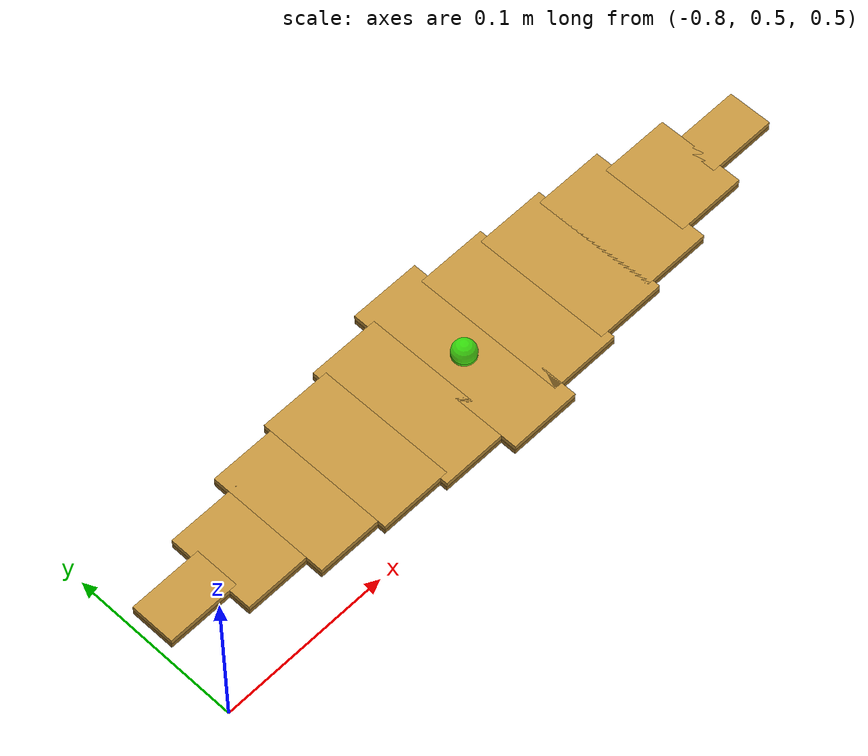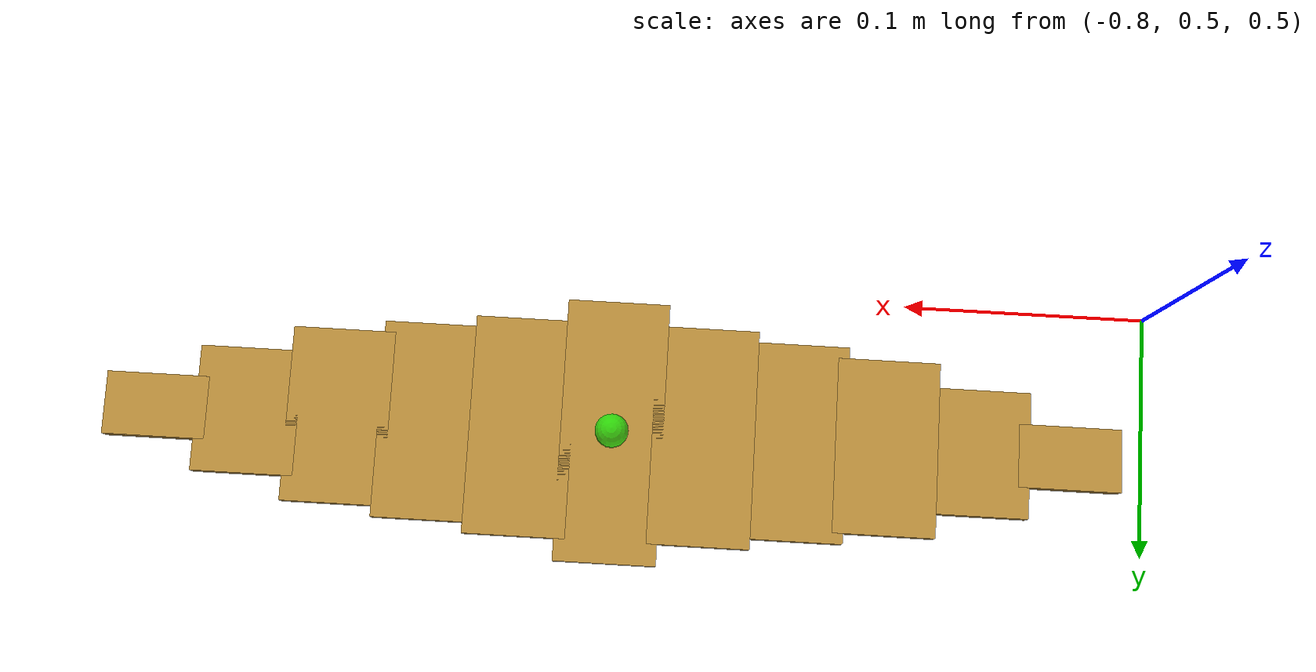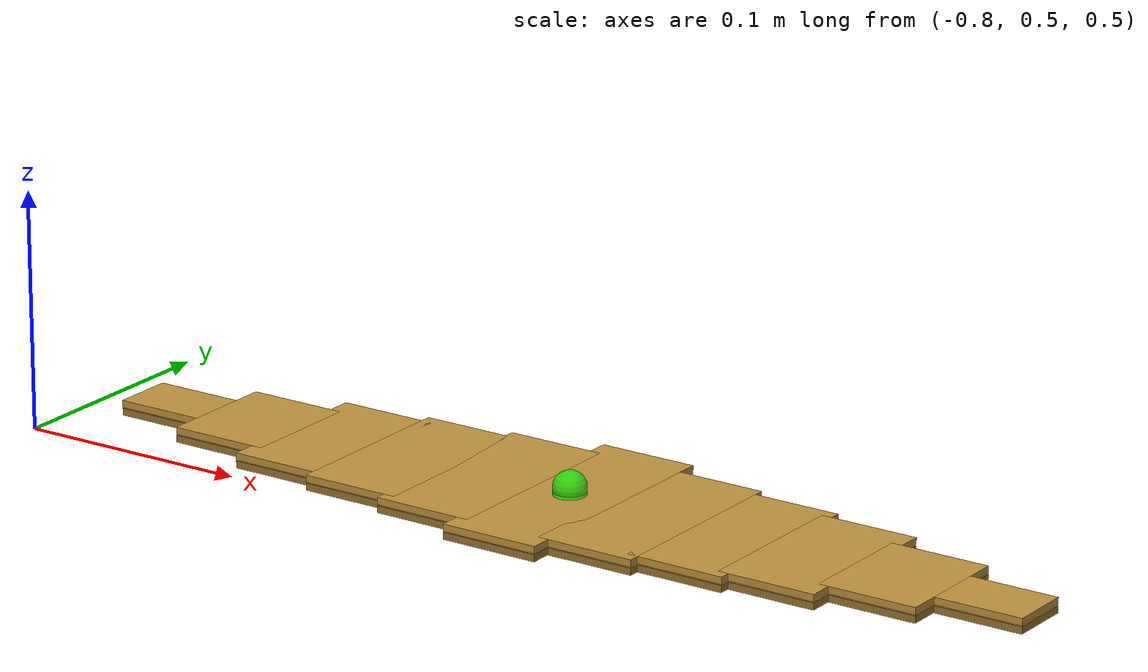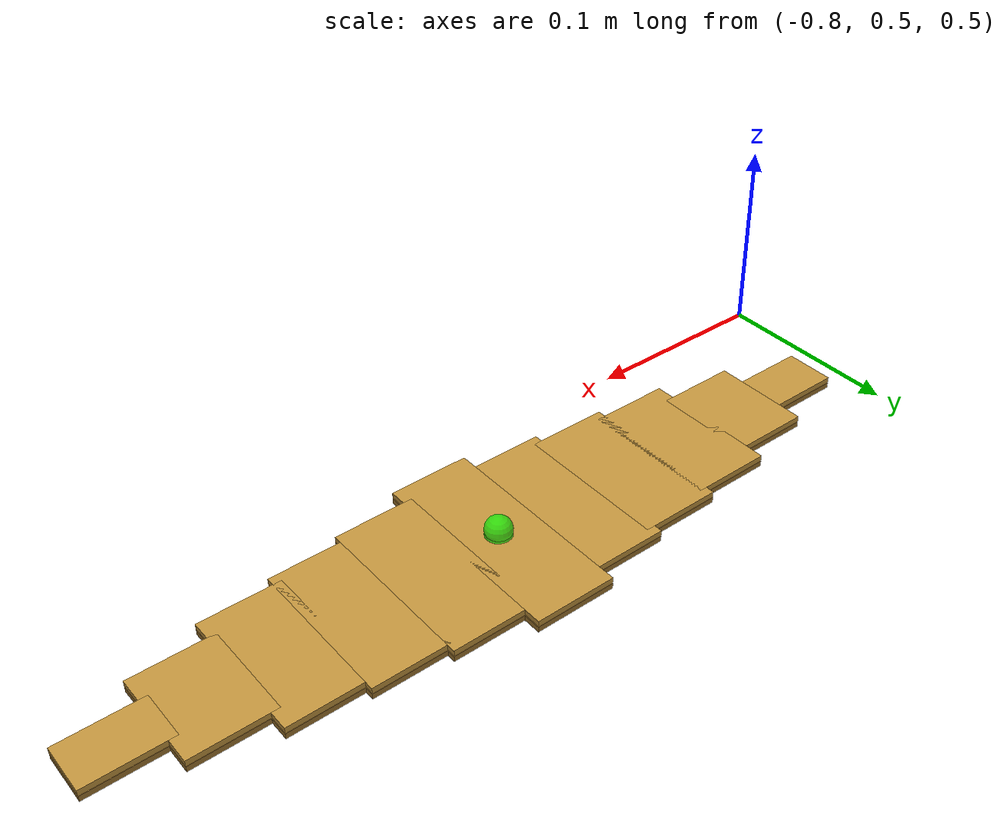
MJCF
<?xml version='1.0' encoding='utf-8'?>
<mujoco model="compliant bamboo leaf pair">
  <asset>
    <material name="compliant_bamboo_mat_bottom" rgba="0.62 0.46 0.18 1" specular="0.08" shininess="0.12"/>
    <material name="compliant_bamboo_mat_top" rgba="0.76 0.58 0.24 1" specular="0.08" shininess="0.12"/>
  </asset>
  <worldbody>
    <body name="staged_bamboo_leaf_bottom" pos="-0.58 0.56 0.4952" euler="0 0 0">
    <freejoint name="staged_bamboo_leaf_bottom_freejoint"/>
    <body name="staged_bamboo_leaf_bottom_seg_05">
    <geom name="staged_bamboo_leaf_bottom_seg_05_geom" type="box" size="0.02138 0.05500 0.00150" material="compliant_bamboo_mat_bottom" mass="0.000909" friction="4 2 1" condim="6" contype="1" conaffinity="5"/>
    <site name="staged_bamboo_leaf_bottom_pick_site" pos="0 0 0.00450" type="sphere" size="0.007" rgba="0 1 0 0.7"/>
    <site name="staged_bamboo_leaf_bottom_center_site" pos="0 0 0.00350" type="sphere" size="0.006" rgba="1 0 0 0.6"/>
      <body name="staged_bamboo_leaf_bottom_seg_06" pos="0.03818 0 0">
      <joint name="staged_bamboo_leaf_bottom_bend_06" type="hinge" axis="0 1 0" pos="-0.01909 0 0" range="-1.57 1.57" damping="0.012" stiffness="0.045" armature="0.0002" limited="true"/>
      <geom name="staged_bamboo_leaf_bottom_seg_06_geom" type="box" size="0.02138 0.04580 0.00150" material="compliant_bamboo_mat_bottom" mass="0.000909" friction="4 2 1" condim="6" contype="1" conaffinity="5"/>
      <body name="staged_bamboo_leaf_bottom_seg_07" pos="0.03818 0 0">
      <joint name="staged_bamboo_leaf_bottom_bend_07" type="hinge" axis="0 1 0" pos="-0.01909 0 0" range="-1.57 1.57" damping="0.012" stiffness="0.045" armature="0.0002" limited="true"/>
      <geom name="staged_bamboo_leaf_bottom_seg_07_geom" type="box" size="0.02138 0.04130 0.00150" material="compliant_bamboo_mat_bottom" mass="0.000909" friction="4 2 1" condim="6" contype="1" conaffinity="5"/>
      <body name="staged_bamboo_leaf_bottom_seg_08" pos="0.03818 0 0">
      <joint name="staged_bamboo_leaf_bottom_bend_08" type="hinge" axis="0 1 0" pos="-0.01909 0 0" range="-1.57 1.57" damping="0.012" stiffness="0.045" armature="0.0002" limited="true"/>
      <geom name="staged_bamboo_leaf_bottom_seg_08_geom" type="box" size="0.02138 0.03670 0.00150" material="compliant_bamboo_mat_bottom" mass="0.000909" friction="4 2 1" condim="6" contype="1" conaffinity="5"/>
      <body name="staged_bamboo_leaf_bottom_seg_09" pos="0.03818 0 0">
      <joint name="staged_bamboo_leaf_bottom_bend_09" type="hinge" axis="0 1 0" pos="-0.01909 0 0" range="-1.57 1.57" damping="0.012" stiffness="0.045" armature="0.0002" limited="true"/>
      <geom name="staged_bamboo_leaf_bottom_seg_09_geom" type="box" size="0.02138 0.02640 0.00150" material="compliant_bamboo_mat_bottom" mass="0.000909" friction="4 2 1" condim="6" contype="1" conaffinity="5"/>
      <body name="staged_bamboo_leaf_bottom_seg_10" pos="0.03818 0 0">
      <joint name="staged_bamboo_leaf_bottom_bend_10" type="hinge" axis="0 1 0" pos="-0.01909 0 0" range="-1.57 1.57" damping="0.012" stiffness="0.045" armature="0.0002" limited="true"/>
      <geom name="staged_bamboo_leaf_bottom_seg_10_geom" type="box" size="0.02138 0.01320 0.00150" material="compliant_bamboo_mat_bottom" mass="0.000909" friction="4 2 1" condim="6" contype="1" conaffinity="5"/>
      </body>
      </body>
      </body>
      </body>
      </body>
      <body name="staged_bamboo_leaf_bottom_seg_04" pos="-0.03818 0 0">
      <joint name="staged_bamboo_leaf_bottom_bend_05" type="hinge" axis="0 -1 0" pos="0.01909 0 0" range="-1.57 1.57" damping="0.012" stiffness="0.045" armature="0.0002" limited="true"/>
      <geom name="staged_bamboo_leaf_bottom_seg_04_geom" type="box" size="0.02138 0.04580 0.00150" material="compliant_bamboo_mat_bottom" mass="0.000909" friction="4 2 1" condim="6" contype="1" conaffinity="5"/>
      <body name="staged_bamboo_leaf_bottom_seg_03" pos="-0.03818 0 0">
      <joint name="staged_bamboo_leaf_bottom_bend_04" type="hinge" axis="0 -1 0" pos="0.01909 0 0" range="-1.57 1.57" damping="0.012" stiffness="0.045" armature="0.0002" limited="true"/>
      <geom name="staged_bamboo_leaf_bottom_seg_03_geom" type="box" size="0.02138 0.04130 0.00150" material="compliant_bamboo_mat_bottom" mass="0.000909" friction="4 2 1" condim="6" contype="1" conaffinity="5"/>
      <body name="staged_bamboo_leaf_bottom_seg_02" pos="-0.03818 0 0">
      <joint name="staged_bamboo_leaf_bottom_bend_03" type="hinge" axis="0 -1 0" pos="0.01909 0 0" range="-1.57 1.57" damping="0.012" stiffness="0.045" armature="0.0002" limited="true"/>
      <geom name="staged_bamboo_leaf_bottom_seg_02_geom" type="box" size="0.02138 0.03670 0.00150" material="compliant_bamboo_mat_bottom" mass="0.000909" friction="4 2 1" condim="6" contype="1" conaffinity="5"/>
      <body name="staged_bamboo_leaf_bottom_seg_01" pos="-0.03818 0 0">
      <joint name="staged_bamboo_leaf_bottom_bend_02" type="hinge" axis="0 -1 0" pos="0.01909 0 0" range="-1.57 1.57" damping="0.012" stiffness="0.045" armature="0.0002" limited="true"/>
      <geom name="staged_bamboo_leaf_bottom_seg_01_geom" type="box" size="0.02138 0.02640 0.00150" material="compliant_bamboo_mat_bottom" mass="0.000909" friction="4 2 1" condim="6" contype="1" conaffinity="5"/>
      <body name="staged_bamboo_leaf_bottom_seg_00" pos="-0.03818 0 0">
      <joint name="staged_bamboo_leaf_bottom_bend_01" type="hinge" axis="0 -1 0" pos="0.01909 0 0" range="-1.57 1.57" damping="0.012" stiffness="0.045" armature="0.0002" limited="true"/>
      <geom name="staged_bamboo_leaf_bottom_seg_00_geom" type="box" size="0.02138 0.01320 0.00150" material="compliant_bamboo_mat_bottom" mass="0.000909" friction="4 2 1" condim="6" contype="1" conaffinity="5"/>
      </body>
      </body>
      </body>
      </body>
      </body>
    </body>
    </body>
    <body name="staged_bamboo_leaf_top" pos="-0.58 0.56 0.4986" euler="0 0 0">
    <freejoint name="staged_bamboo_leaf_top_freejoint"/>
    <body name="staged_bamboo_leaf_top_seg_05">
    <geom name="staged_bamboo_leaf_top_seg_05_geom" type="box" size="0.02138 0.05500 0.00150" material="compliant_bamboo_mat_top" mass="0.000909" friction="4 2 1" condim="6" contype="1" conaffinity="5"/>
    <site name="staged_bamboo_leaf_top_pick_site" pos="0 0 0.00450" type="sphere" size="0.007" rgba="0 1 0 0.7"/>
    <site name="staged_bamboo_leaf_top_center_site" pos="0 0 0.00350" type="sphere" size="0.006" rgba="1 0 0 0.6"/>
      <body name="staged_bamboo_leaf_top_seg_06" pos="0.03818 0 0">
      <joint name="staged_bamboo_leaf_top_bend_06" type="hinge" axis="0 1 0" pos="-0.01909 0 0" range="-1.57 1.57" damping="0.012" stiffness="0.045" armature="0.0002" limited="true"/>
      <geom name="staged_bamboo_leaf_top_seg_06_geom" type="box" size="0.02138 0.04580 0.00150" material="compliant_bamboo_mat_top" mass="0.000909" friction="4 2 1" condim="6" contype="1" conaffinity="5"/>
      <body name="staged_bamboo_leaf_top_seg_07" pos="0.03818 0 0">
      <joint name="staged_bamboo_leaf_top_bend_07" type="hinge" axis="0 1 0" pos="-0.01909 0 0" range="-1.57 1.57" damping="0.012" stiffness="0.045" armature="0.0002" limited="true"/>
      <geom name="staged_bamboo_leaf_top_seg_07_geom" type="box" size="0.02138 0.04130 0.00150" material="compliant_bamboo_mat_top" mass="0.000909" friction="4 2 1" condim="6" contype="1" conaffinity="5"/>
      <body name="staged_bamboo_leaf_top_seg_08" pos="0.03818 0 0">
      <joint name="staged_bamboo_leaf_top_bend_08" type="hinge" axis="0 1 0" pos="-0.01909 0 0" range="-1.57 1.57" damping="0.012" stiffness="0.045" armature="0.0002" limited="true"/>
      <geom name="staged_bamboo_leaf_top_seg_08_geom" type="box" size="0.02138 0.03670 0.00150" material="compliant_bamboo_mat_top" mass="0.000909" friction="4 2 1" condim="6" contype="1" conaffinity="5"/>
      <body name="staged_bamboo_leaf_top_seg_09" pos="0.03818 0 0">
      <joint name="staged_bamboo_leaf_top_bend_09" type="hinge" axis="0 1 0" pos="-0.01909 0 0" range="-1.57 1.57" damping="0.012" stiffness="0.045" armature="0.0002" limited="true"/>
      <geom name="staged_bamboo_leaf_top_seg_09_geom" type="box" size="0.02138 0.02640 0.00150" material="compliant_bamboo_mat_top" mass="0.000909" friction="4 2 1" condim="6" contype="1" conaffinity="5"/>
      <body name="staged_bamboo_leaf_top_seg_10" pos="0.03818 0 0">
      <joint name="staged_bamboo_leaf_top_bend_10" type="hinge" axis="0 1 0" pos="-0.01909 0 0" range="-1.57 1.57" damping="0.012" stiffness="0.045" armature="0.0002" limited="true"/>
      <geom name="staged_bamboo_leaf_top_seg_10_geom" type="box" size="0.02138 0.01320 0.00150" material="compliant_bamboo_mat_top" mass="0.000909" friction="4 2 1" condim="6" contype="1" conaffinity="5"/>
      </body>
      </body>
      </body>
      </body>
      </body>
      <body name="staged_bamboo_leaf_top_seg_04" pos="-0.03818 0 0">
      <joint name="staged_bamboo_leaf_top_bend_05" type="hinge" axis="0 -1 0" pos="0.01909 0 0" range="-1.57 1.57" damping="0.012" stiffness="0.045" armature="0.0002" limited="true"/>
      <geom name="staged_bamboo_leaf_top_seg_04_geom" type="box" size="0.02138 0.04580 0.00150" material="compliant_bamboo_mat_top" mass="0.000909" friction="4 2 1" condim="6" contype="1" conaffinity="5"/>
      <body name="staged_bamboo_leaf_top_seg_03" pos="-0.03818 0 0">
      <joint name="staged_bamboo_leaf_top_bend_04" type="hinge" axis="0 -1 0" pos="0.01909 0 0" range="-1.57 1.57" damping="0.012" stiffness="0.045" armature="0.0002" limited="true"/>
      <geom name="staged_bamboo_leaf_top_seg_03_geom" type="box" size="0.02138 0.04130 0.00150" material="compliant_bamboo_mat_top" mass="0.000909" friction="4 2 1" condim="6" contype="1" conaffinity="5"/>
      <body name="staged_bamboo_leaf_top_seg_02" pos="-0.03818 0 0">
      <joint name="staged_bamboo_leaf_top_bend_03" type="hinge" axis="0 -1 0" pos="0.01909 0 0" range="-1.57 1.57" damping="0.012" stiffness="0.045" armature="0.0002" limited="true"/>
      <geom name="staged_bamboo_leaf_top_seg_02_geom" type="box" size="0.02138 0.03670 0.00150" material="compliant_bamboo_mat_top" mass="0.000909" friction="4 2 1" condim="6" contype="1" conaffinity="5"/>
      <body name="staged_bamboo_leaf_top_seg_01" pos="-0.03818 0 0">
      <joint name="staged_bamboo_leaf_top_bend_02" type="hinge" axis="0 -1 0" pos="0.01909 0 0" range="-1.57 1.57" damping="0.012" stiffness="0.045" armature="0.0002" limited="true"/>
      <geom name="staged_bamboo_leaf_top_seg_01_geom" type="box" size="0.02138 0.02640 0.00150" material="compliant_bamboo_mat_top" mass="0.000909" friction="4 2 1" condim="6" contype="1" conaffinity="5"/>
      <body name="staged_bamboo_leaf_top_seg_00" pos="-0.03818 0 0">
      <joint name="staged_bamboo_leaf_top_bend_01" type="hinge" axis="0 -1 0" pos="0.01909 0 0" range="-1.57 1.57" damping="0.012" stiffness="0.045" armature="0.0002" limited="true"/>
      <geom name="staged_bamboo_leaf_top_seg_00_geom" type="box" size="0.02138 0.01320 0.00150" material="compliant_bamboo_mat_top" mass="0.000909" friction="4 2 1" condim="6" contype="1" conaffinity="5"/>
      </body>
      </body>
      </body>
      </body>
      </body>
    </body>
    </body>
  </worldbody>
</mujoco>
